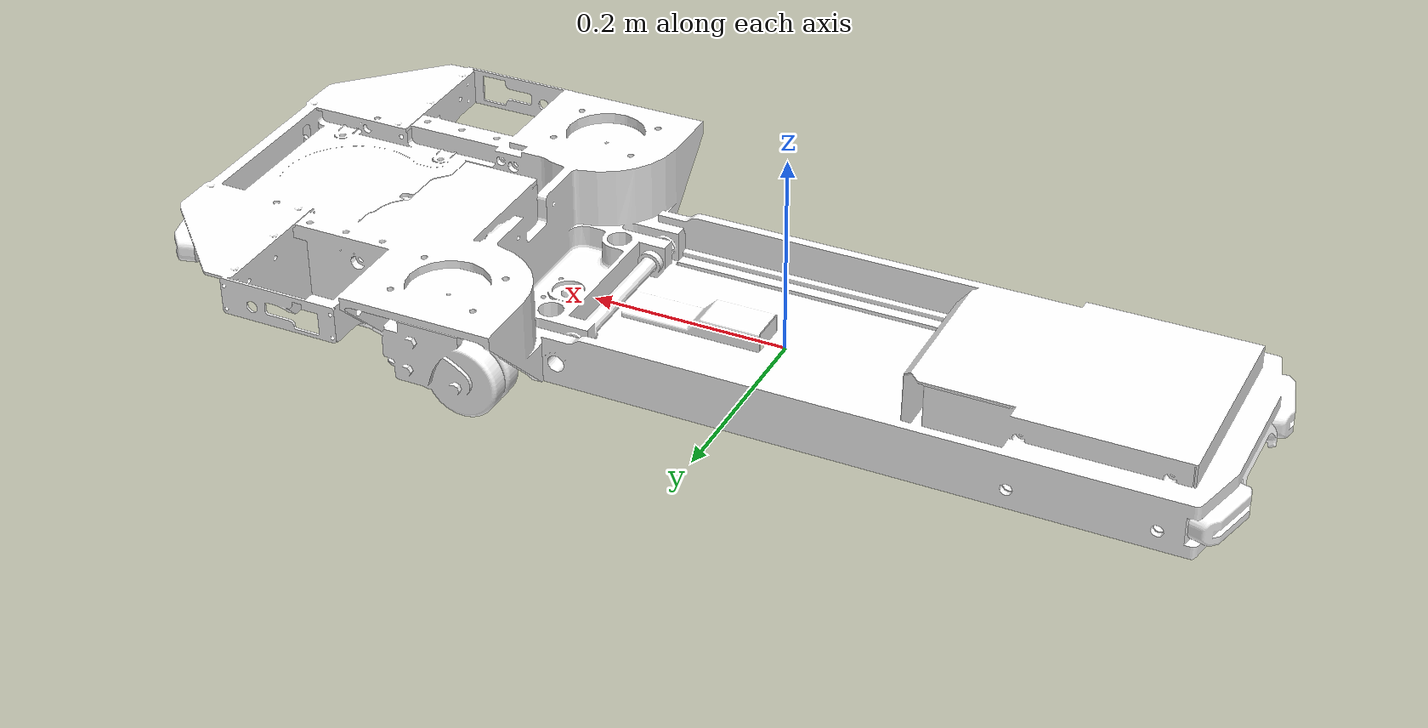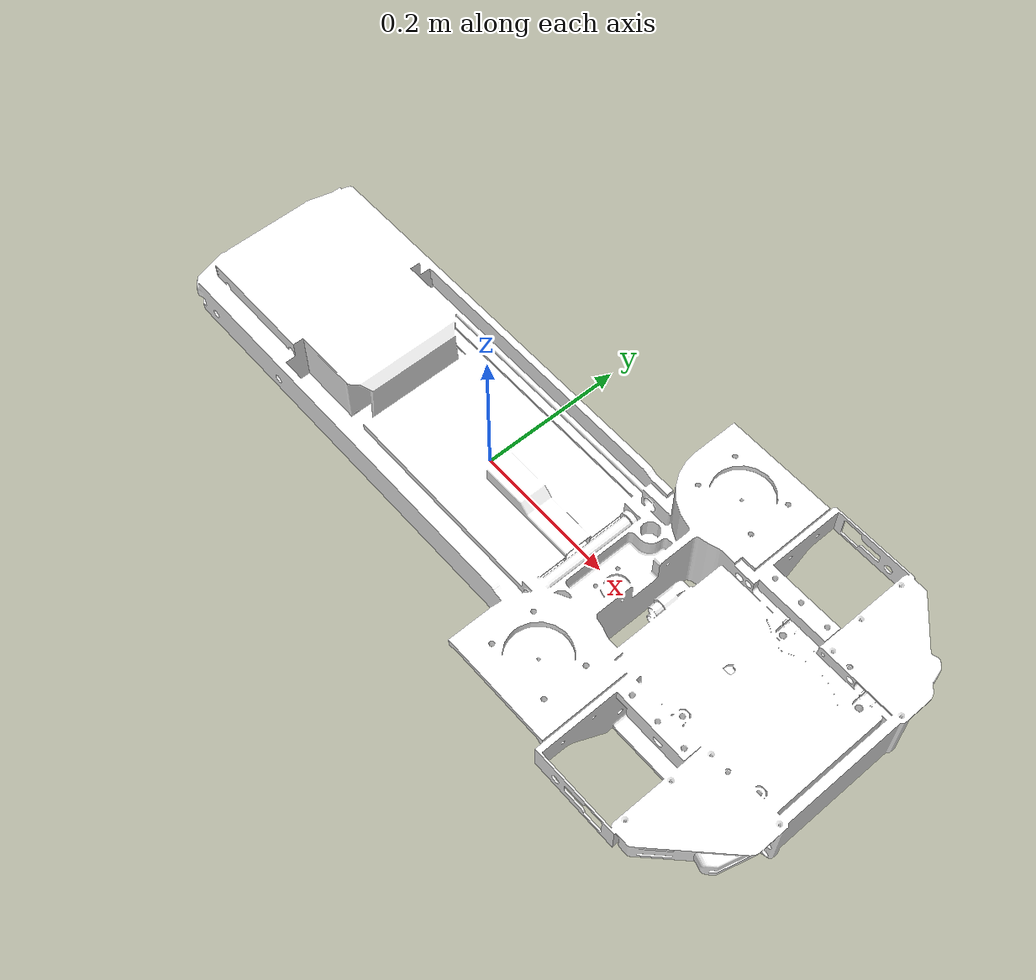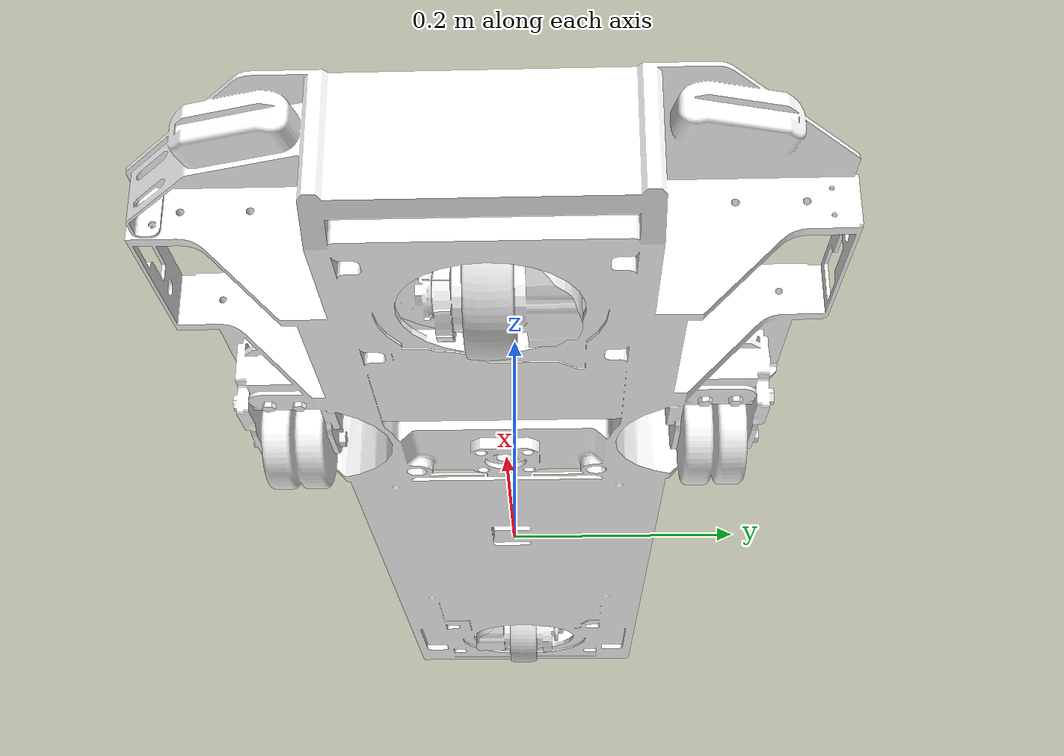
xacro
<?xml version="1.0"?>
<robot xmlns:xacro="http://www.ros.org/wiki/xacro" name="lrobot_drive">
  <xacro:arg name="prefix" default="" />
  <xacro:arg name="use_mock_hardware" default="false" />

  <!-- 导入基本的几何形状 -->
  <xacro:include filename="$(find lrobot_control)/urdf/lrobot_description.xacro" />

  <!-- 导入 ros2_control 描述部分 -->
  <xacro:include filename="$(find lrobot_control)/ros2_control/lrobot.ros2_control.xacro" />

  <xacro:lrobot prefix="$(arg prefix)" />

  <xacro:lrobot_ros2_control
    name="lrobot" prefix="$(arg prefix)"
    bus_config="$(find lrobot_canopen)/config/canopen/bus.yml"
    master_config="$(find lrobot_canopen)/config/canopen/master.dcf"
    can_interface_name="vcan0"
    master_bin=""/>

</robot>

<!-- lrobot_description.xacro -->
<robot xmlns:xacro="http://www.ros.org/wiki/xacro">
 <xacro:macro name="lrobot" params="prefix">
  <link
    name="base_link">
    <visual>
      <origin
        xyz="0 0 0"
        rpy="0 0 0" />
      <geometry>
        <mesh
          filename="file://$(find lrobot_control)/meshes/base_link.STL" />
      </geometry>
      <material
        name="">
        <color
          rgba="1 1 1 1" />
      </material>
    </visual>
    <collision>
      <origin
        xyz="0 0 0"
        rpy="0 0 0" />
      <geometry>
        <mesh
          filename="file://$(find lrobot_control)/meshes/base_link.STL" />
      </geometry>
    </collision>
  </link>
  <link
    name="front_motor_link">
    <inertial>
      <origin
        xyz="1.05575716112943E-05 0.00570468333581119 -0.0090747413608689"
        rpy="0 0 0" />
      <mass
        value="0.51702420409672" />
      <inertia
        ixx="0.000968082619732085"
        ixy="-3.12658211227848E-07"
        ixz="8.78065277324308E-08"
        iyy="0.000876835485106486"
        iyz="2.78350471345476E-05"
        izz="0.0016511568483983" />
    </inertial>
    <visual>
      <origin
        xyz="0 0 0"
        rpy="0 0 0" />
      <geometry>
        <mesh
          filename="file://$(find lrobot_control)/meshes/front_motor_link.STL" />
      </geometry>
      <material
        name="">
        <color
          rgba="1 1 1 1" />
      </material>
    </visual>
    <collision>
      <origin
        xyz="0 0 0"
        rpy="0 0 0" />
      <geometry>
        <mesh
          filename="file://$(find lrobot_control)/meshes/front_motor_link.STL" />
      </geometry>
    </collision>
  </link>
  <joint
    name="front_motor_joint"
    type="revolute">
    <origin
      xyz="0.47162 0 0.0235"
      rpy="0 0 0" />
    <parent
      link="base_link" />
    <child
      link="front_motor_link" />
    <axis
      xyz="0 0 1" />
    <limit effort="5" velocity="6.28" lower="-2.1" upper="2.1"/>
  </joint>
  <link
    name="front_wheel_link">
    <inertial>
      <origin
        xyz="1.16819358778053E-06 -2.81798078207851E-09 1.15138368977918E-07"
        rpy="0 0 0" />
      <mass
        value="0.0999721992667236" />
      <inertia
        ixx="5.9133985167861E-05"
        ixy="1.07483000251058E-07"
        ixz="4.2321873649809E-22"
        iyy="0.000103690790939151"
        iyz="3.87361461130485E-19"
        izz="5.91337258914627E-05" />
    </inertial>
    <visual>
      <origin
        xyz="0 0 0"
        rpy="0 0 0" />
      <geometry>
        <mesh
          filename="file://$(find lrobot_control)/meshes/front_wheel_link.STL" />
      </geometry>
      <material
        name="">
        <color
          rgba="0.870588235294118 0.870588235294118 0.870588235294118 1" />
      </material>
    </visual>
    <collision>
      <origin
        xyz="0 0 0"
        rpy="0 0 0" />
      <geometry>
        <mesh
          filename="file://$(find lrobot_control)/meshes/front_wheel_link.STL" />
      </geometry>
    </collision>
  </link>
  <joint
    name="front_wheel_joint"
    type="continuous">
    <origin
      xyz="0 0 -0.0248501151383689"
      rpy="0 0 0" />
    <parent
      link="front_motor_link" />
    <child
      link="front_wheel_link" />
    <axis
      xyz="0 1 0" />
  </joint>
  <link
    name="back_motor_link">
    <inertial>
      <origin
        xyz="0 0 0"
        rpy="0 0 0" />
      <mass
        value="0" />
      <inertia
        ixx="0"
        ixy="0"
        ixz="0"
        iyy="0"
        iyz="0"
        izz="0" />
    </inertial>
    <visual>
      <origin
        xyz="0 0 0"
        rpy="0 0 0" />
      <geometry>
        <mesh
          filename="file://$(find lrobot_control)/meshes/back_motor_link.STL" />
      </geometry>
      <material
        name="">
        <color
          rgba="1 1 1 1" />
      </material>
    </visual>
    <collision>
      <origin
        xyz="0 0 0"
        rpy="0 0 0" />
      <geometry>
        <mesh
          filename="file://$(find lrobot_control)/meshes/back_motor_link.STL" />
      </geometry>
    </collision>
  </link>
  <joint
    name="back_motor_joint"
    type="revolute">
    <origin
      xyz="-0.33338 0.0 0.0235"
      rpy="0 0 0" />
    <parent
      link="base_link" />
    <child
      link="back_motor_link" />
    <axis
      xyz="0 0 1" />
    <limit effort="5" velocity="6.28" lower="-2.1" upper="2.1"/>
  </joint>
  <link
    name="back_wheel_link">
    <inertial>
      <origin
        xyz="-1.1681935878638E-06 2.81798072504829E-09 1.15138368873835E-07"
        rpy="0 0 0" />
      <mass
        value="0.0999721992667252" />
      <inertia
        ixx="5.91339851678625E-05"
        ixy="1.07483000251002E-07"
        ixz="1.3540110551282E-22"
        iyy="0.000103690790939154"
        iyz="-2.31678884454168E-19"
        izz="5.91337258914642E-05" />
    </inertial>
    <visual>
      <origin
        xyz="0 0 0"
        rpy="0 0 0" />
      <geometry>
        <mesh
          filename="file://$(find lrobot_control)/meshes/back_wheel_link.STL" />
      </geometry>
      <material
        name="">
        <color
          rgba="0.870588235294118 0.870588235294118 0.870588235294118 1" />
      </material>
    </visual>
    <collision>
      <origin
        xyz="0 0 0"
        rpy="0 0 0" />
      <geometry>
        <mesh
          filename="file://$(find lrobot_control)/meshes/back_wheel_link.STL" />
      </geometry>
    </collision>
  </link>
  <joint
    name="back_wheel_joint"
    type="continuous">
    <origin
      xyz="0 0 -0.02485"
      rpy="0 0 0" />
    <parent
      link="back_motor_link" />
    <child
      link="back_wheel_link" />
    <axis
      xyz="0 1 0" />
  </joint>
   </xacro:macro>
</robot>
